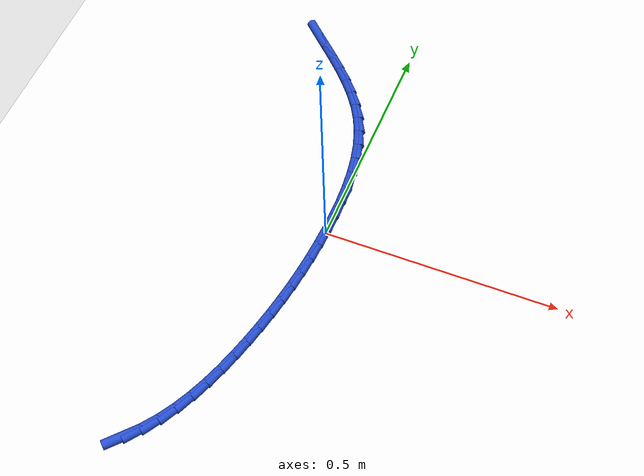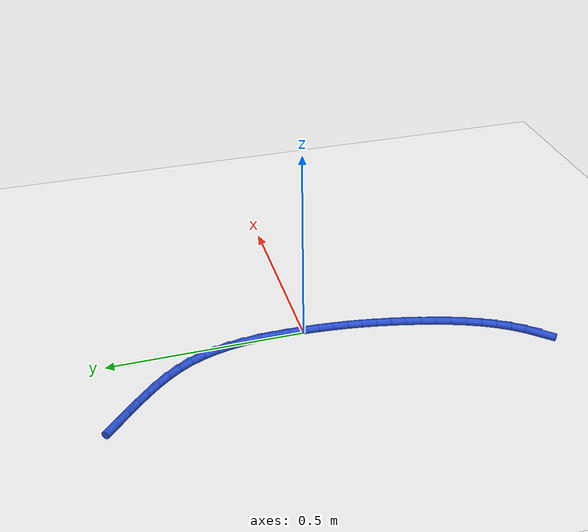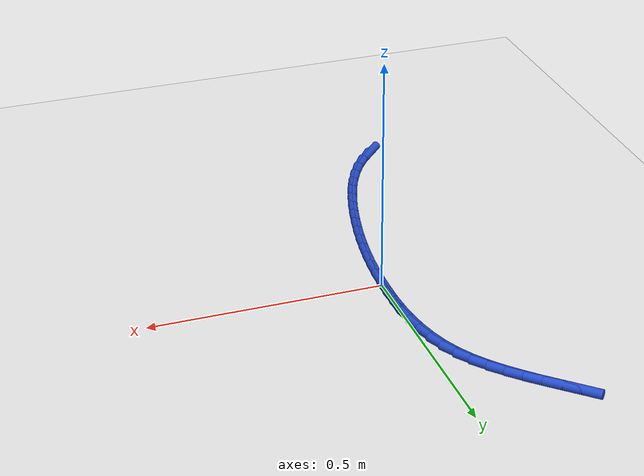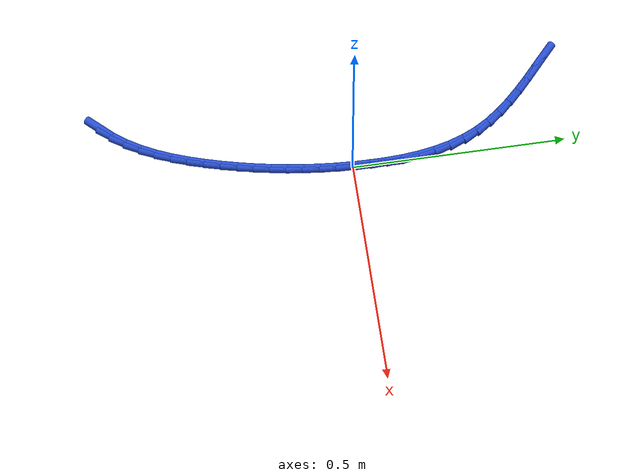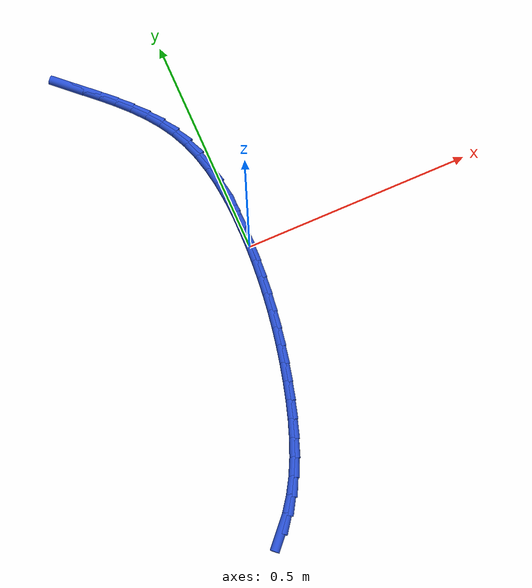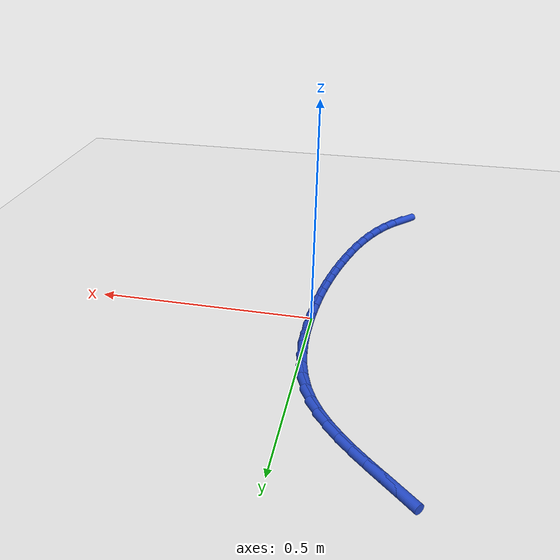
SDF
<sdf version="1.6">
 <world name="default">
  <model name="ground_plane">
   <static>1</static>
   <link name="link">
    <collision name="collision">
     <geometry><plane><normal>0 0 1</normal><size>100 100</size></plane></geometry>
     <surface><friction><ode><mu>100</mu><mu2>50</mu2></ode></friction></surface>
    </collision>
    <visual name="visual">
     <cast_shadows>0</cast_shadows>
     <geometry><plane><normal>0 0 1</normal><size>100 100</size></plane></geometry>
     <material>
      <script><uri>file://media/materials/scripts/gazebo.material</uri><name>Gazebo/WhiteGlow</name></script>
     </material>
    </visual>
   </link>
  </model>
  <model name="line">
   <link name="link_0">
    <pose>-2.1033522146218786e-17 -1.3877787807814457e-17 0.01 0 1.57 1.5426861105589769</pose>
    <collision name="collision">
     <geometry><cylinder><radius>0.01</radius><length>0.08</length></cylinder></geometry>
    </collision>
    <visual name="visual">
     <material>
      <script><name>Gazebo/Blue</name><uri>file://media/materials/scripts/gazebo.material</uri></script>
     </material>
     <geometry><cylinder><radius>0.01</radius><length>0.08</length></cylinder></geometry>
    </visual>
   </link>
   <link name="link_1">
    <pose>0.0010906914985311805 0.0387903170800203 0.01 0 1.57 -1.5649687846395208</pose>
    <collision name="collision">
     <geometry><cylinder><radius>0.01</radius><length>0.08</length></cylinder></geometry>
    </collision>
    <visual name="visual">
     <material>
      <script><name>Gazebo/Blue</name><uri>file://media/materials/scripts/gazebo.material</uri></script>
     </material>
     <geometry><cylinder><radius>0.01</radius><length>0.08</length></cylinder></geometry>
    </visual>
   </link>
   <link name="link_2">
    <pose>0.0008631996236783038 0.07782723754406148 0.01 0 1.57 -1.5228137744650385</pose>
    <collision name="collision">
     <geometry><cylinder><radius>0.01</radius><length>0.08</length></cylinder></geometry>
    </collision>
    <visual name="visual">
     <material>
      <script><name>Gazebo/Blue</name><uri>file://media/materials/scripts/gazebo.material</uri></script>
     </material>
     <geometry><cylinder><radius>0.01</radius><length>0.08</length></cylinder></geometry>
    </visual>
   </link>
   <link name="link_3">
    <pose>-0.0010072002278098784 0.11677815026931554 0.01 0 1.57 -1.4715181799131993</pose>
    <collision name="collision">
     <geometry><cylinder><radius>0.01</radius><length>0.08</length></cylinder></geometry>
    </collision>
    <visual name="visual">
     <material>
      <script><name>Gazebo/Blue</name><uri>file://media/materials/scripts/gazebo.material</uri></script>
     </material>
     <geometry><cylinder><radius>0.01</radius><length>0.08</length></cylinder></geometry>
    </visual>
   </link>
   <link name="link_4">
    <pose>-0.004845232659184596 0.15531044413297435 0.01 0 1.57 -1.4099373749600639</pose>
    <collision name="collision">
     <geometry><cylinder><radius>0.01</radius><length>0.08</length></cylinder></geometry>
    </collision>
    <visual name="visual">
     <material>
      <script><name>Gazebo/Blue</name><uri>file://media/materials/scripts/gazebo.material</uri></script>
     </material>
     <geometry><cylinder><radius>0.01</radius><length>0.08</length></cylinder></geometry>
    </visual>
   </link>
   <link name="link_5">
    <pose>-0.01097562227369708 0.19309150801223007 0.01 0 1.57 -1.3367943161368112</pose>
    <collision name="collision">
     <geometry><cylinder><radius>0.01</radius><length>0.08</length></cylinder></geometry>
    </collision>
    <visual name="visual">
     <material>
      <script><name>Gazebo/Blue</name><uri>file://media/materials/scripts/gazebo.material</uri></script>
     </material>
     <geometry><cylinder><radius>0.01</radius><length>0.08</length></cylinder></geometry>
    </visual>
   </link>
   <link name="link_6">
    <pose>-0.019723093674598548 0.22978873078427461 0.01 0 1.57 -1.2508575145730594</pose>
    <collision name="collision">
     <geometry><cylinder><radius>0.01</radius><length>0.08</length></cylinder></geometry>
    </collision>
    <visual name="visual">
     <material>
      <script><name>Gazebo/Blue</name><uri>file://media/materials/scripts/gazebo.material</uri></script>
     </material>
     <geometry><cylinder><radius>0.01</radius><length>0.08</length></cylinder></geometry>
    </visual>
   </link>
   <link name="link_7">
    <pose>-0.031412371465140254 0.2650695013263001 0.01 0 1.57 -1.1512648486886758</pose>
    <collision name="collision">
     <geometry><cylinder><radius>0.01</radius><length>0.08</length></cylinder></geometry>
    </collision>
    <visual name="visual">
     <material>
      <script><name>Gazebo/Blue</name><uri>file://media/materials/scripts/gazebo.material</uri></script>
     </material>
     <geometry><cylinder><radius>0.01</radius><length>0.08</length></cylinder></geometry>
    </visual>
   </link>
   <link name="link_8">
    <pose>-0.04636795111524933 0.29860138621147914 0.01 0 1.57 -1.044689336991002</pose>
    <collision name="collision">
     <geometry><cylinder><radius>0.01</radius><length>0.08</length></cylinder></geometry>
    </collision>
    <visual name="visual">
     <material>
      <script><name>Gazebo/Blue</name><uri>file://media/materials/scripts/gazebo.material</uri></script>
     </material>
     <geometry><cylinder><radius>0.01</radius><length>0.08</length></cylinder></geometry>
    </visual>
   </link>
   <link name="link_9">
    <pose>-0.06471916566687594 0.3302033031060519 0.01 0 1.57 -0.9515311333777676</pose>
    <collision name="collision">
     <geometry><cylinder><radius>0.01</radius><length>0.08</length></cylinder></geometry>
    </collision>
    <visual name="visual">
     <material>
      <script><name>Gazebo/Blue</name><uri>file://media/materials/scripts/gazebo.material</uri></script>
     </material>
     <geometry><cylinder><radius>0.01</radius><length>0.08</length></cylinder></geometry>
    </visual>
   </link>
   <link name="link_10">
    <pose>-0.086044670504212 0.36012122762124 0.01 0 1.57 -0.8763383493266814</pose>
    <collision name="collision">
     <geometry><cylinder><radius>0.01</radius><length>0.08</length></cylinder></geometry>
    </collision>
    <visual name="visual">
     <material>
      <script><name>Gazebo/Blue</name><uri>file://media/materials/scripts/gazebo.material</uri></script>
     </material>
     <geometry><cylinder><radius>0.01</radius><length>0.08</length></cylinder></geometry>
    </visual>
   </link>
   <link name="link_11">
    <pose>-0.10982668859197266 0.3886759200091722 0.01 0 1.57 -0.8190387850133729</pose>
    <collision name="collision">
     <geometry><cylinder><radius>0.01</radius><length>0.08</length></cylinder></geometry>
    </collision>
    <visual name="visual">
     <material>
      <script><name>Gazebo/Blue</name><uri>file://media/materials/scripts/gazebo.material</uri></script>
     </material>
     <geometry><cylinder><radius>0.01</radius><length>0.08</length></cylinder></geometry>
    </visual>
   </link>
   <link name="link_12">
    <pose>-0.135547442894873 0.41618814052197733 0.01 0 1.57 -0.7788862932524584</pose>
    <collision name="collision">
     <geometry><cylinder><radius>0.01</radius><length>0.08</length></cylinder></geometry>
    </collision>
    <visual name="visual">
     <material>
      <script><name>Gazebo/Blue</name><uri>file://media/materials/scripts/gazebo.material</uri></script>
     </material>
     <geometry><cylinder><radius>0.01</radius><length>0.08</length></cylinder></geometry>
    </visual>
   </link>
   <link name="link_13">
    <pose>-0.1626891563776283 0.4429786494117849 0.01 0 1.57 -0.7549977820929026</pose>
    <collision name="collision">
     <geometry><cylinder><radius>0.01</radius><length>0.08</length></cylinder></geometry>
    </collision>
    <visual name="visual">
     <material>
      <script><name>Gazebo/Blue</name><uri>file://media/materials/scripts/gazebo.material</uri></script>
     </material>
     <geometry><cylinder><radius>0.01</radius><length>0.08</length></cylinder></geometry>
    </visual>
   </link>
   <link name="link_14">
    <pose>-0.19073405200495386 0.46936820693072373 0.01 0 1.57 -0.7466716957659749</pose>
    <collision name="collision">
     <geometry><cylinder><radius>0.01</radius><length>0.08</length></cylinder></geometry>
    </collision>
    <visual name="visual">
     <material>
      <script><name>Gazebo/Blue</name><uri>file://media/materials/scripts/gazebo.material</uri></script>
     </material>
     <geometry><cylinder><radius>0.01</radius><length>0.08</length></cylinder></geometry>
    </visual>
   </link>
   <link name="link_15">
    <pose>-0.21916435274156465 0.4956775733309226 0.01 0 1.57 -0.753539095530679</pose>
    <collision name="collision">
     <geometry><cylinder><radius>0.01</radius><length>0.08</length></cylinder></geometry>
    </collision>
    <visual name="visual">
     <material>
      <script><name>Gazebo/Blue</name><uri>file://media/materials/scripts/gazebo.material</uri></script>
     </material>
     <geometry><cylinder><radius>0.01</radius><length>0.08</length></cylinder></geometry>
    </visual>
   </link>
   <link name="link_194">
    <pose>-0.17988282628091928 -0.5694586534994581 0.01 0 1.57 0.8300154755627381</pose>
    <collision name="collision">
     <geometry><cylinder><radius>0.01</radius><length>0.08</length></cylinder></geometry>
    </collision>
    <visual name="visual">
     <material>
      <script><name>Gazebo/Blue</name><uri>file://media/materials/scripts/gazebo.material</uri></script>
     </material>
     <geometry><cylinder><radius>0.01</radius><length>0.08</length></cylinder></geometry>
    </visual>
   </link>
   <link name="link_195">
    <pose>-0.15500665353555615 -0.5422573821058986 0.01 0 1.57 0.9352239628876539</pose>
    <collision name="collision">
     <geometry><cylinder><radius>0.01</radius><length>0.08</length></cylinder></geometry>
    </collision>
    <visual name="visual">
     <material>
      <script><name>Gazebo/Blue</name><uri>file://media/materials/scripts/gazebo.material</uri></script>
     </material>
     <geometry><cylinder><radius>0.01</radius><length>0.08</length></cylinder></geometry>
    </visual>
   </link>
   <link name="link_196">
    <pose>-0.13293167208558054 -0.5123326825679401 0.01 0 1.57 1.0262572094929092</pose>
    <collision name="collision">
     <geometry><cylinder><radius>0.01</radius><length>0.08</length></cylinder></geometry>
    </collision>
    <visual name="visual">
     <material>
      <script><name>Gazebo/Blue</name><uri>file://media/materials/scripts/gazebo.material</uri></script>
     </material>
     <geometry><cylinder><radius>0.01</radius><length>0.08</length></cylinder></geometry>
    </visual>
   </link>
   <link name="link_197">
    <pose>-0.11341357032819725 -0.48010420343595833 0.01 0 1.57 1.1036025683467243</pose>
    <collision name="collision">
     <geometry><cylinder><radius>0.01</radius><length>0.08</length></cylinder></geometry>
    </collision>
    <visual name="visual">
     <material>
      <script><name>Gazebo/Blue</name><uri>file://media/materials/scripts/gazebo.material</uri></script>
     </material>
     <geometry><cylinder><radius>0.01</radius><length>0.08</length></cylinder></geometry>
    </visual>
   </link>
   <link name="link_198">
    <pose>-0.09620667807347213 -0.44599336268597567 0.01 0 1.57 1.168369946949027</pose>
    <collision name="collision">
     <geometry><cylinder><radius>0.01</radius><length>0.08</length></cylinder></geometry>
    </collision>
    <visual name="visual">
     <material>
      <script><name>Gazebo/Blue</name><uri>file://media/materials/scripts/gazebo.material</uri></script>
     </material>
     <geometry><cylinder><radius>0.01</radius><length>0.08</length></cylinder></geometry>
    </visual>
   </link>
   <link name="link_199">
    <pose>-0.08106532513147162 -0.4104215782940149 0.01 0 1.57 1.2218255870005166</pose>
    <collision name="collision">
     <geometry><cylinder><radius>0.01</radius><length>0.08</length></cylinder></geometry>
    </collision>
    <visual name="visual">
     <material>
      <script><name>Gazebo/Blue</name><uri>file://media/materials/scripts/gazebo.material</uri></script>
     </material>
     <geometry><cylinder><radius>0.01</radius><length>0.08</length></cylinder></geometry>
    </visual>
   </link>
   <link name="link_200">
    <pose>-0.06774384131226205 -0.3738102682360987 0.01 0 1.57 1.2651464138356694</pose>
    <collision name="collision">
     <geometry><cylinder><radius>0.01</radius><length>0.08</length></cylinder></geometry>
    </collision>
    <visual name="visual">
     <material>
      <script><name>Gazebo/Blue</name><uri>file://media/materials/scripts/gazebo.material</uri></script>
     </material>
     <geometry><cylinder><radius>0.01</radius><length>0.08</length></cylinder></geometry>
    </visual>
   </link>
   <link name="link_201">
    <pose>-0.055996556425909894 -0.3365808504882499 0.01 0 1.57 1.2992885869799153</pose>
    <collision name="collision">
     <geometry><cylinder><radius>0.01</radius><length>0.08</length></cylinder></geometry>
    </collision>
    <visual name="visual">
     <material>
      <script><name>Gazebo/Blue</name><uri>file://media/materials/scripts/gazebo.material</uri></script>
     </material>
     <geometry><cylinder><radius>0.01</radius><length>0.08</length></cylinder></geometry>
    </visual>
   </link>
   <link name="link_202">
    <pose>-0.045577800282481304 -0.2991547430264905 0.01 0 1.57 1.3259905853002678</pose>
    <collision name="collision">
     <geometry><cylinder><radius>0.01</radius><length>0.08</length></cylinder></geometry>
    </collision>
    <visual name="visual">
     <material>
      <script><name>Gazebo/Blue</name><uri>file://media/materials/scripts/gazebo.material</uri></script>
     </material>
     <geometry><cylinder><radius>0.01</radius><length>0.08</length></cylinder></geometry>
    </visual>
   </link>
   <link name="link_203">
    <pose>-0.03626914381549582 -0.26189273386042394 0.01 0 1.57 1.3515960040644963</pose>
    <collision name="collision">
     <geometry><cylinder><radius>0.01</radius><length>0.08</length></cylinder></geometry>
    </collision>
    <visual name="visual">
     <material>
      <script><name>Gazebo/Blue</name><uri>file://media/materials/scripts/gazebo.material</uri></script>
     </material>
     <geometry><cylinder><radius>0.01</radius><length>0.08</length></cylinder></geometry>
    </visual>
   </link>
   <link name="link_204">
    <pose>-0.028007718486135355 -0.2248093833712269 0.01 0 1.57 1.3780977889156254</pose>
    <collision name="collision">
     <geometry><cylinder><radius>0.01</radius><length>0.08</length></cylinder></geometry>
    </collision>
    <visual name="visual">
     <material>
      <script><name>Gazebo/Blue</name><uri>file://media/materials/scripts/gazebo.material</uri></script>
     </material>
     <geometry><cylinder><radius>0.01</radius><length>0.08</length></cylinder></geometry>
    </visual>
   </link>
   <link name="link_205">
    <pose>-0.020785787046725613 -0.18779654744381824 0.01 0 1.57 1.405253542927222</pose>
    <collision name="collision">
     <geometry><cylinder><radius>0.01</radius><length>0.08</length></cylinder></geometry>
    </collision>
    <visual name="visual">
     <material>
      <script><name>Gazebo/Blue</name><uri>file://media/materials/scripts/gazebo.material</uri></script>
     </material>
     <geometry><cylinder><radius>0.01</radius><length>0.08</length></cylinder></geometry>
    </visual>
   </link>
   <link name="link_206">
    <pose>-0.014595676977296926 -0.15074593790009502 0.01 0 1.57 1.4327967158619135</pose>
    <collision name="collision">
     <geometry><cylinder><radius>0.01</radius><length>0.08</length></cylinder></geometry>
    </collision>
    <visual name="visual">
     <material>
      <script><name>Gazebo/Blue</name><uri>file://media/materials/scripts/gazebo.material</uri></script>
     </material>
     <geometry><cylinder><radius>0.01</radius><length>0.08</length></cylinder></geometry>
    </visual>
   </link>
   <link name="link_207">
    <pose>-0.009429715757879672 -0.11354926656195441 0.01 0 1.57 1.4604487615885189</pose>
    <collision name="collision">
     <geometry><cylinder><radius>0.01</radius><length>0.08</length></cylinder></geometry>
    </collision>
    <visual name="visual">
     <material>
      <script><name>Gazebo/Blue</name><uri>file://media/materials/scripts/gazebo.material</uri></script>
     </material>
     <geometry><cylinder><radius>0.01</radius><length>0.08</length></cylinder></geometry>
    </visual>
   </link>
   <link name="link_208">
    <pose>-0.005280230868504194 -0.07609824525129358 0.01 0 1.57 1.4879297397841122</pose>
    <collision name="collision">
     <geometry><cylinder><radius>0.01</radius><length>0.08</length></cylinder></geometry>
    </collision>
    <visual name="visual">
     <material>
      <script><name>Gazebo/Blue</name><uri>file://media/materials/scripts/gazebo.material</uri></script>
     </material>
     <geometry><cylinder><radius>0.01</radius><length>0.08</length></cylinder></geometry>
    </visual>
   </link>
   <link name="link_209">
    <pose>-0.00213954978920079 -0.0382845857900088 0.01 0 1.57 1.5149689876533508</pose>
    <collision name="collision">
     <geometry><cylinder><radius>0.01</radius><length>0.08</length></cylinder></geometry>
    </collision>
    <visual name="visual">
     <material>
      <script><name>Gazebo/Blue</name><uri>file://media/materials/scripts/gazebo.material</uri></script>
     </material>
     <geometry><cylinder><radius>0.01</radius><length>0.08</length></cylinder></geometry>
    </visual>
   </link>
   <link name="link_210">
    <pose>1.5178830414797062e-18 1.8735013540549517e-16 0.01 0 1.57 1.5413149341249721</pose>
    <collision name="collision">
     <geometry><cylinder><radius>0.01</radius><length>0.08</length></cylinder></geometry>
    </collision>
    <visual name="visual">
     <material>
      <script><name>Gazebo/Blue</name><uri>file://media/materials/scripts/gazebo.material</uri></script>
     </material>
     <geometry><cylinder><radius>0.01</radius><length>0.08</length></cylinder></geometry>
    </visual>
   </link>
   <link name="link_211">
    <pose>0.0011460910190680103 0.03886380029683887 0.01 0 1.57 1.5667432645940003</pose>
    <collision name="collision">
     <geometry><cylinder><radius>0.01</radius><length>0.08</length></cylinder></geometry>
    </collision>
    <visual name="visual">
     <material>
      <script><name>Gazebo/Blue</name><uri>file://media/materials/scripts/gazebo.material</uri></script>
     </material>
     <geometry><cylinder><radius>0.01</radius><length>0.08</length></cylinder></geometry>
    </visual>
   </link>
   <link name="link_212">
    <pose>0.0013063957879728043 0.07841510327861108 0.01 0 1.57 1.5541378657634473</pose>
    <collision name="collision">
     <geometry><cylinder><radius>0.01</radius><length>0.08</length></cylinder></geometry>
    </collision>
    <visual name="visual">
     <material>
      <script><name>Gazebo/Blue</name><uri>file://media/materials/scripts/gazebo.material</uri></script>
     </material>
     <geometry><cylinder><radius>0.01</radius><length>0.08</length></cylinder></geometry>
    </visual>
   </link>
  </model>
 </world>
</sdf>
